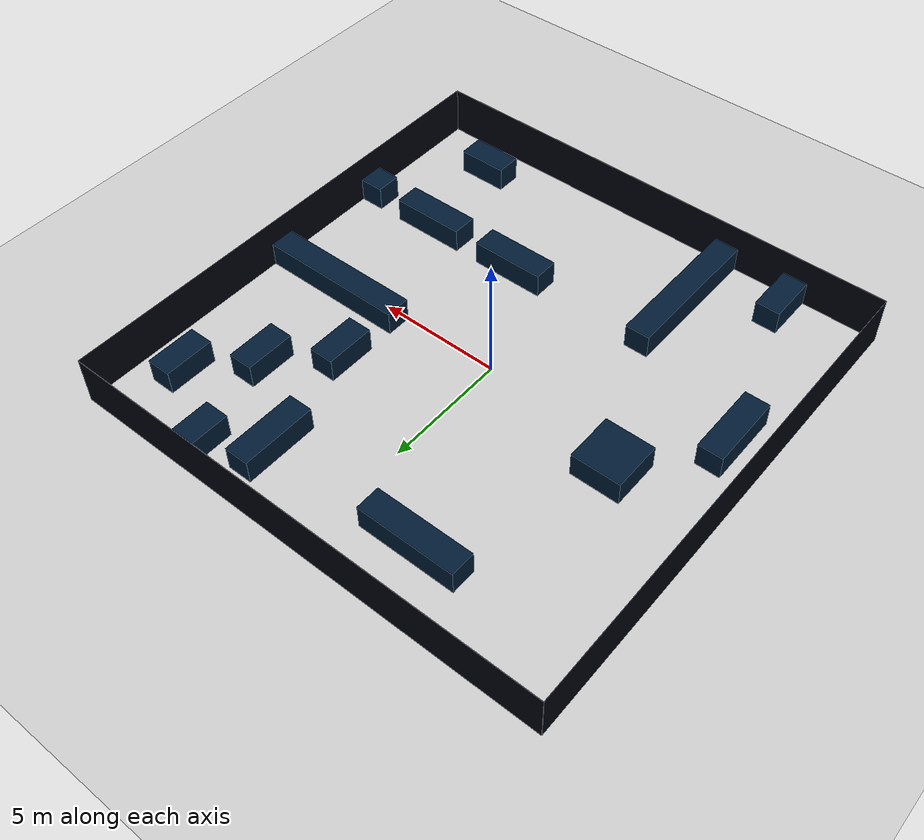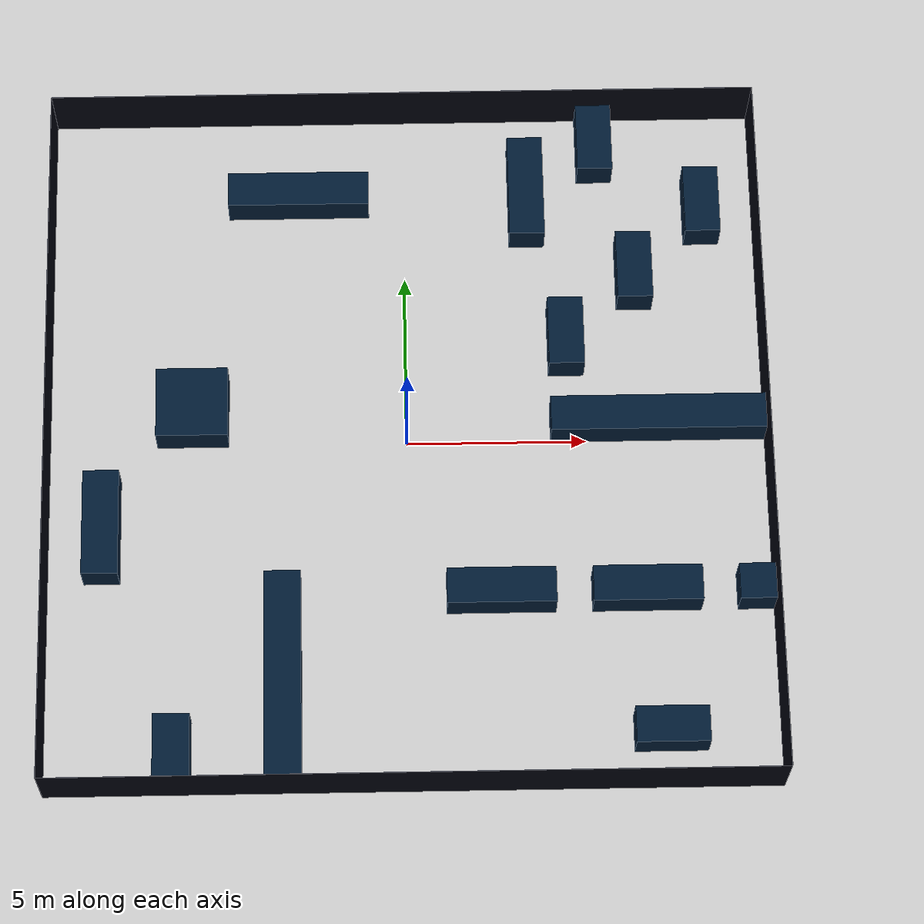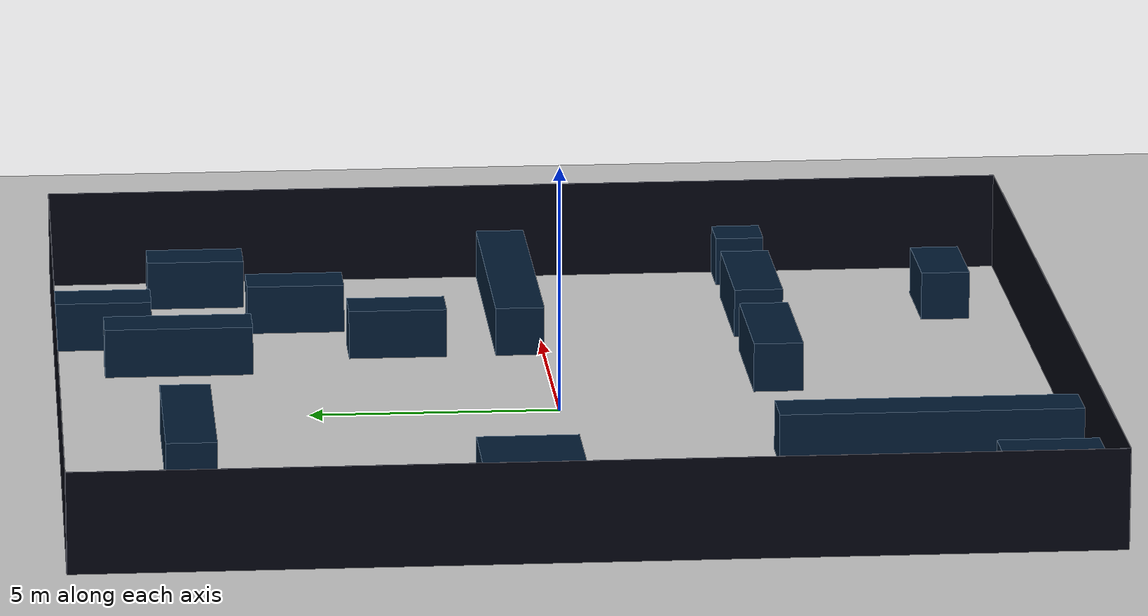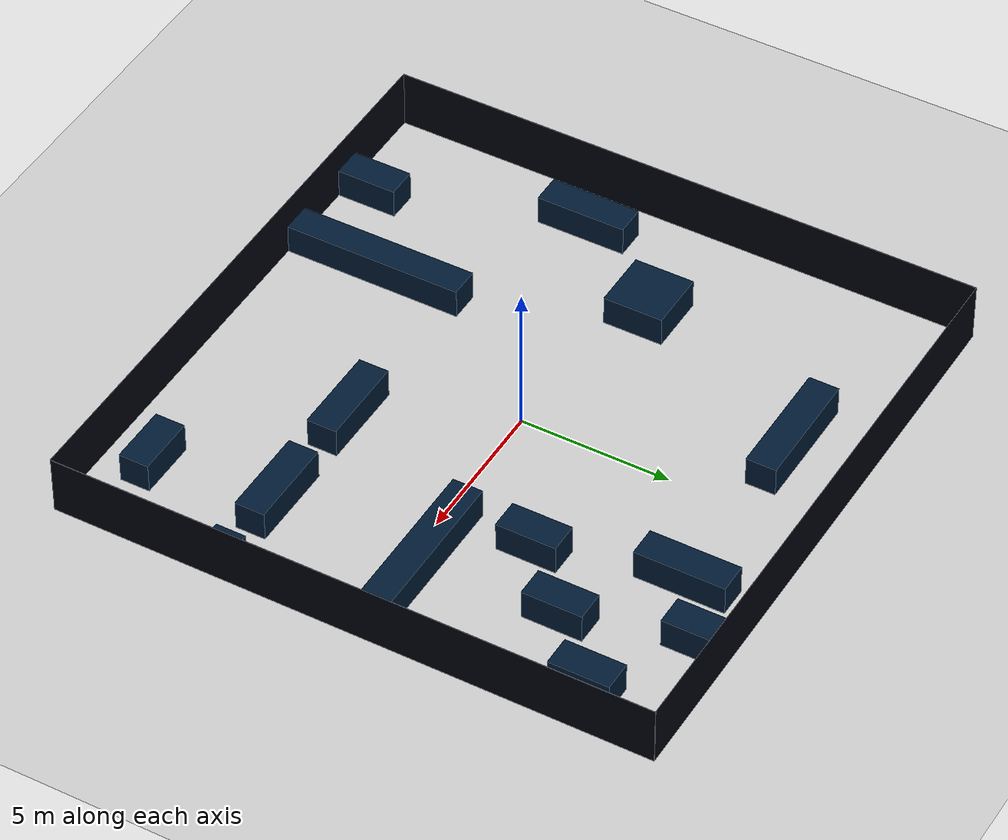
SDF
<?xml version="1.0"?>
<sdf version='1.8'>
    <world name='maze'>
        <physics name='1ms' type='ignored'>
            <max_step_size>0.003</max_step_size>
            <real_time_factor>1</real_time_factor>
            <real_time_update_rate>1000</real_time_update_rate>
        </physics>
        <plugin name='ignition::gazebo::systems::Physics' filename='ignition-gazebo-physics-system' />
        <plugin name='ignition::gazebo::systems::UserCommands' filename='ignition-gazebo-user-commands-system' />
        <plugin name='ignition::gazebo::systems::SceneBroadcaster' filename='ignition-gazebo-scene-broadcaster-system' />
        <plugin name='ignition::gazebo::systems::Contact' filename='ignition-gazebo-contact-system' />
        <light name='sun' type='directional'>
            <cast_shadows>1</cast_shadows>
            <pose>0 0 10 0 -0 0</pose>
            <diffuse>0.8 0.8 0.8 1</diffuse>
            <specular>0.2 0.2 0.2 1</specular>
            <attenuation>
                <range>1000</range>
                <constant>0.90000000000000002</constant>
                <linear>0.01</linear>
                <quadratic>0.001</quadratic>
            </attenuation>
            <direction>-0.5 0.1 -0.9</direction>
            <spot>
                <inner_angle>0</inner_angle>
                <outer_angle>0</outer_angle>
                <falloff>0</falloff>
            </spot>
        </light>
        <gravity>0 0 -9.8</gravity>
        <magnetic_field>6e-06 2.3e-05 -4.2e-05</magnetic_field>
        <atmosphere type='adiabatic' />
        <scene>
            <ambient>0.4 0.4 0.4 1</ambient>
            <background>0.7 0.7 0.7 1</background>
            <shadows>1</shadows>
        </scene>
        <model name='ground_plane'>
            <static>1</static>
            <link name='link'>
                <collision name='collision'>
                    <geometry>
                        <plane>
                            <normal>0 0 1</normal>
                            <size>100 100</size>
                        </plane>
                    </geometry>
                    <surface>
                        <friction>
                            <ode />
                        </friction>
                        <bounce />
                        <contact />
                    </surface>
                </collision>
                <visual name='visual'>
                    <geometry>
                        <plane>
                            <normal>0 0 1</normal>
                            <size>100 100</size>
                        </plane>
                    </geometry>
                    <material>
                        <ambient>0.8 0.8 0.8 1</ambient>
                        <diffuse>0.8 0.8 0.8 1</diffuse>
                        <specular>0.8 0.8 0.8 1</specular>
                    </material>
                    <plugin name='__default__' filename='__default__' />
                </visual>
            </link>
            <plugin name='__default__' filename='__default__' />
            <pose>0 0 0 0 -0 0</pose>
        </model>

        <model name='border'>
            <pose>0 0 1 0 0 0</pose>
            <static>true</static>
            <link name='wall1'>
                <pose>-10.005 0 0 0 0 0</pose>
                <static>true</static>
                <collision name='wall1_collision'>
                    <geometry>
                        <box>
                            <size>0.01 20 2</size>
                        </box>
                    </geometry>
                </collision>
                <visual name='wall1_visual'>
                    <geometry>
                        <box>
                            <size>0.01 20 2</size>
                        </box>
                    </geometry>
                    <material>
                        <ambient>0.1 0.1 0.1 1</ambient>
                        <diffuse>0 0.01 0.05 1</diffuse>
                        <specular>0 0.01 0.05 1</specular>
                    </material>
                </visual>
            </link>
            <link name='wall2'>
                <pose>10.005 0 0 0 0 0</pose>
                <static>true</static>
                <collision name='wall2_collision'>
                    <geometry>
                        <box>
                            <size>0.01 20 2</size>
                        </box>
                    </geometry>
                </collision>
                <visual name='wall2_visual'>
                    <geometry>
                        <box>
                            <size>0.01 20 2</size>
                        </box>
                    </geometry>
                    <material>
                        <ambient>0.1 0.1 0.1 1</ambient>
                        <diffuse>0 0.01 0.05 1</diffuse>
                        <specular>0 0.01 0.05 1</specular>
                    </material>
                </visual>
            </link>
            <link name='wall3'>
                <pose>0 10.005 0 0 0 0</pose>
                <static>true</static>
                <collision name='wall3_collision'>
                    <geometry>
                        <box>
                            <size>20 0.01 2</size>
                        </box>
                    </geometry>
                </collision>
                <visual name='wall3_visual'>
                    <geometry>
                        <box>
                            <size>20 0.01 2</size>
                        </box>
                    </geometry>
                    <material>
                        <ambient>0.1 0.1 0.1 1</ambient>
                        <diffuse>0 0.01 0.05 1</diffuse>
                        <specular>0 0.01 0.05 1</specular>
                    </material>
                </visual>
            </link>
            <link name='wall4'>
                <pose>0 -10.005 0 0 0 0</pose>
                <static>true</static>
                <collision name='wall4_collision'>
                    <geometry>
                        <box>
                            <size>20 0.01 2</size>
                        </box>
                    </geometry>
                    <material>
                        <ambient>0.1 0.1 0.1 1</ambient>
                        <diffuse>0 0.01 0.05 1</diffuse>
                        <specular>0 0.01 0.05 1</specular>
                    </material>
                </collision>
                <visual name='wall4_visual'>
                    <geometry>
                        <box>
                            <size>20 0.01 2</size>
                        </box>
                    </geometry>
                    <material>
                        <ambient>0.1 0.1 0.1 1</ambient>
                        <diffuse>0 0.01 0.05 1</diffuse>
                        <specular>0 0.01 0.05 1</specular>
                    </material>
                </visual>
            </link>
        </model>

        <model name='obstacles'>
            <pose>0 0 0.5 0 0 0</pose>
            <static>true</static>
            <link name='wall1'>
                <pose>-6.5 -9 0 0 0 0</pose>
                <static>true</static>
                <collision name='wall1_collision'>
                    <geometry>
                        <box>
                            <size>1 2 1</size>
                        </box>
                    </geometry>
                </collision>
                <visual name='wall1_visual'>
                    <geometry>
                        <box>
                            <size>1 2 1</size>
                        </box>
                    </geometry>
                    <material>
                        <ambient>0.1 0.1 0.1 1</ambient>
                        <diffuse>0 0.1 0.2 1</diffuse>
                        <specular>0 0.01 0.05 1</specular>
                    </material>
                </visual>
            </link>

            <link name='wall3'>
                <pose>-3.5 -7 0 0 0 0</pose>
                <static>true</static>
                <collision name='wall3_collision'>
                    <geometry>
                        <box>
                            <size>1 6 1</size>
                        </box>
                    </geometry>
                </collision>
                <visual name='wall3_visual'>
                    <geometry>
                        <box>
                            <size>1 6 1</size>
                        </box>
                    </geometry>
                    <material>
                        <ambient>0.1 0.1 0.1 1</ambient>
                        <diffuse>0 0.1 0.2 1</diffuse>
                        <specular>0 0.01 0.05 1</specular>
                    </material>
                </visual>
            </link>

            <link name='wall5'>
                <pose>7 -8.5 0 0 0 0</pose>
                <static>true</static>
                <collision name='wall5_collision'>
                    <geometry>
                        <box>
                            <size>2 1 1</size>
                        </box>
                    </geometry>
                </collision>
                <visual name='wall5_visual'>
                    <geometry>
                        <box>
                            <size>2 1 1</size>
                        </box>
                    </geometry>
                    <material>
                        <ambient>0.1 0.1 0.1 1</ambient>
                        <diffuse>0 0.1 0.2 1</diffuse>
                        <specular>0 0.01 0.05 1</specular>
                    </material>
                </visual>
            </link>

            <link name='wall7'>
                <pose>-8.5 -2.5 0 0 0 0</pose>
                <static>true</static>
                <collision name='wall7_collision'>
                    <geometry>
                        <box>
                            <size>1 3 1</size>
                        </box>
                    </geometry>
                </collision>
                <visual name='wall7_visual'>
                    <geometry>
                        <box>
                            <size>1 3 1</size>
                        </box>
                    </geometry>
                    <material>
                        <ambient>0.1 0.1 0.1 1</ambient>
                        <diffuse>0 0.1 0.2 1</diffuse>
                        <specular>0 0.01 0.05 1</specular>
                    </material>
                </visual>
            </link>

            <link name='wall9'>
                <pose>-6 1 0 0 0 0</pose>
                <static>true</static>
                <collision name='wall9_collision'>
                    <geometry>
                        <box>
                            <size>2 2 1</size>
                        </box>
                    </geometry>
                </collision>
                <visual name='wall9_visual'>
                    <geometry>
                        <box>
                            <size>2 2 1</size>
                        </box>
                    </geometry>
                    <material>
                        <ambient>0.1 0.1 0.1 1</ambient>
                        <diffuse>0 0.1 0.2 1</diffuse>
                        <specular>0 0.01 0.05 1</specular>
                    </material>
                </visual>
            </link>

            <link name='wall11'>
                <pose>-3 7.5 0 0 0 0</pose>
                <static>true</static>
                <collision name='wall11_collision'>
                    <geometry>
                        <box>
                            <size>4 1 1</size>
                        </box>
                    </geometry>
                </collision>
                <visual name='wall11_visual'>
                    <geometry>
                        <box>
                            <size>4 1 1</size>
                        </box>
                    </geometry>
                    <material>
                        <ambient>0.1 0.1 0.1 1</ambient>
                        <diffuse>0 0.1 0.2 1</diffuse>
                        <specular>0 0.01 0.05 1</specular>
                    </material>
                </visual>
            </link>

            <link name='wall17'>
                <pose>2.5 -4.5 0 0 0 0</pose>
                <static>true</static>
                <collision name='wall17_collision'>
                    <geometry>
                        <box>
                            <size>3 1 1</size>
                        </box>
                    </geometry>
                </collision>
                <visual name='wall17_visual'>
                    <geometry>
                        <box>
                            <size>3 1 1</size>
                        </box>
                    </geometry>
                    <material>
                        <ambient>0.1 0.1 0.1 1</ambient>
                        <diffuse>0 0.1 0.2 1</diffuse>
                        <specular>0 0.01 0.05 1</specular>
                    </material>
                </visual>
            </link>

            <link name='wall19'>
                <pose>6.5 -4.5 0 0 0 0</pose>
                <static>true</static>
                <collision name='wall19_collision'>
                    <geometry>
                        <box>
                            <size>3 1 1</size>
                        </box>
                    </geometry>
                </collision>
                <visual name='wall19_visual'>
                    <geometry>
                        <box>
                            <size>3 1 1</size>
                        </box>
                    </geometry>
                    <material>
                        <ambient>0.1 0.1 0.1 1</ambient>
                        <diffuse>0 0.1 0.2 1</diffuse>
                        <specular>0 0.01 0.05 1</specular>
                    </material>
                </visual>
            </link>

            <link name='wall21'>
                <pose>9.5 -4.5 0 0 0 0</pose>
                <static>true</static>
                <collision name='wall21_collision'>
                    <geometry>
                        <box>
                            <size>1 1 1</size>
                        </box>
                    </geometry>
                </collision>
                <visual name='wall21_visual'>
                    <geometry>
                        <box>
                            <size>1 1 1</size>
                        </box>
                    </geometry>
                    <material>
                        <ambient>0.1 0.1 0.1 1</ambient>
                        <diffuse>0 0.1 0.2 1</diffuse>
                        <specular>0 0.01 0.05 1</specular>
                    </material>
                </visual>
            </link>

            <link name='wall23'>
                <pose>7 0.5 0 0 0 0</pose>
                <static>true</static>
                <collision name='wall23_collision'>
                    <geometry>
                        <box>
                            <size>6 1 1</size>
                        </box>
                    </geometry>
                </collision>
                <visual name='wall23_visual'>
                    <geometry>
                        <box>
                            <size>6 1 1</size>
                        </box>
                    </geometry>
                    <material>
                        <ambient>0.1 0.1 0.1 1</ambient>
                        <diffuse>0 0.1 0.2 1</diffuse>
                        <specular>0 0.01 0.05 1</specular>
                    </material>
                </visual>
            </link>

            <link name='wall27'>
                <pose>3.5 7.5 0 0 0 0</pose>
                <static>true</static>
                <collision name='wall27_collision'>
                    <geometry>
                        <box>
                            <size>1 3 1</size>
                        </box>
                    </geometry>
                </collision>
                <visual name='wall27_visual'>
                    <geometry>
                        <box>
                            <size>1 3 1</size>
                        </box>
                    </geometry>
                    <material>
                        <ambient>0.1 0.1 0.1 1</ambient>
                        <diffuse>0 0.1 0.2 1</diffuse>
                        <specular>0 0.01 0.05 1</specular>
                    </material>
                </visual>
            </link>

            <link name='wall29'>
                <pose>5.5 9 0 0 0 0</pose>
                <static>true</static>
                <collision name='wall29_collision'>
                    <geometry>
                        <box>
                            <size>1 2 1</size>
                        </box>
                    </geometry>
                </collision>
                <visual name='wall29_visual'>
                    <geometry>
                        <box>
                            <size>1 2 1</size>
                        </box>
                    </geometry>
                    <material>
                        <ambient>0.1 0.1 0.1 1</ambient>
                        <diffuse>0 0.1 0.2 1</diffuse>
                        <specular>0 0.01 0.05 1</specular>
                    </material>
                </visual>
            </link>

            <link name='wall31'>
                <pose>4.5 3 0 0 0 0</pose>
                <static>true</static>
                <collision name='wall31_collision'>
                    <geometry>
                        <box>
                            <size>1 2 1</size>
                        </box>
                    </geometry>
                </collision>
                <visual name='wall31_visual'>
                    <geometry>
                        <box>
                            <size>1 2 1</size>
                        </box>
                    </geometry>
                    <material>
                        <ambient>0.1 0.1 0.1 1</ambient>
                        <diffuse>0 0.1 0.2 1</diffuse>
                        <specular>0 0.01 0.05 1</specular>
                    </material>
                </visual>
            </link>

            <link name='wall33'>
                <pose>6.5 5 0 0 0 0</pose>
                <static>true</static>
                <collision name='wall33_collision'>
                    <geometry>
                        <box>
                            <size>1 2 1</size>
                        </box>
                    </geometry>
                </collision>
                <visual name='wall33_visual'>
                    <geometry>
                        <box>
                            <size>1 2 1</size>
                        </box>
                    </geometry>
                    <material>
                        <ambient>0.1 0.1 0.1 1</ambient>
                        <diffuse>0 0.1 0.2 1</diffuse>
                        <specular>0 0.01 0.05 1</specular>
                    </material>
                </visual>
            </link>

            <link name='wall35'>
                <pose>8.5 7 0 0 0 0</pose>
                <static>true</static>
                <collision name='wall35_collision'>
                    <geometry>
                        <box>
                            <size>1 2 1</size>
                        </box>
                    </geometry>
                </collision>
                <visual name='wall35_visual'>
                    <geometry>
                        <box>
                            <size>1 2 1</size>
                        </box>
                    </geometry>
                    <material>
                        <ambient>0.1 0.1 0.1 1</ambient>
                        <diffuse>0 0.1 0.2 1</diffuse>
                        <specular>0 0.01 0.05 1</specular>
                    </material>
                </visual>
            </link>

        </model>
    </world>
</sdf>
